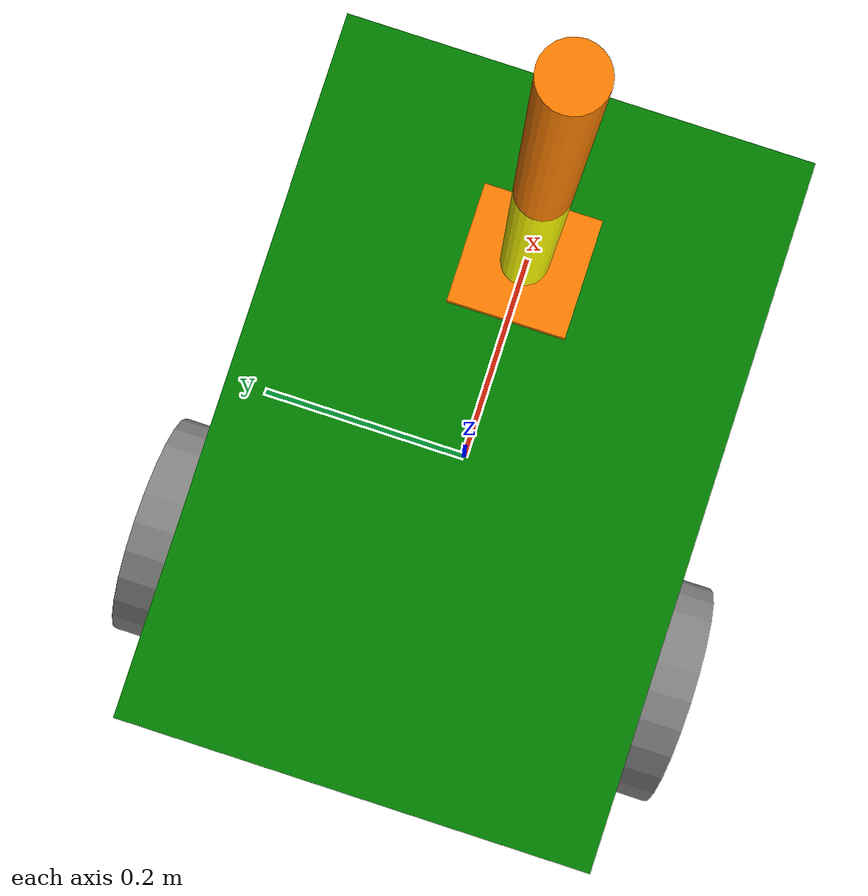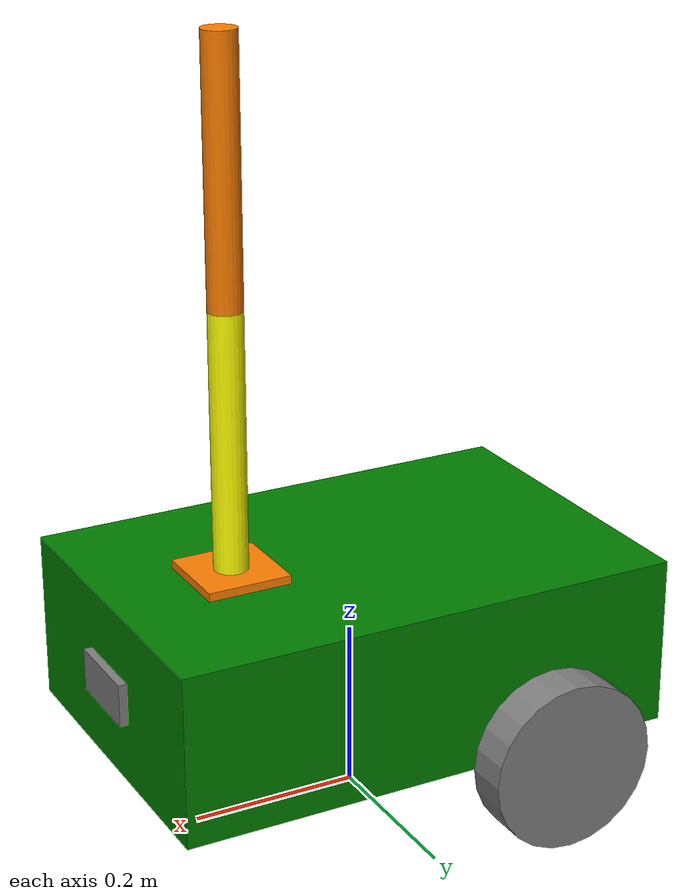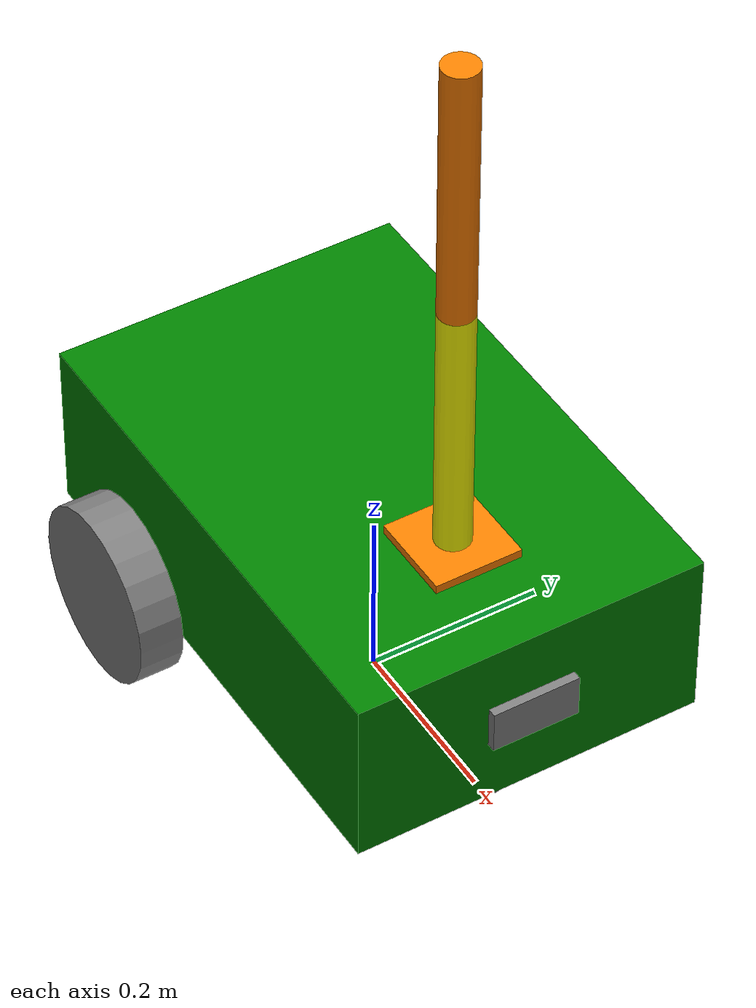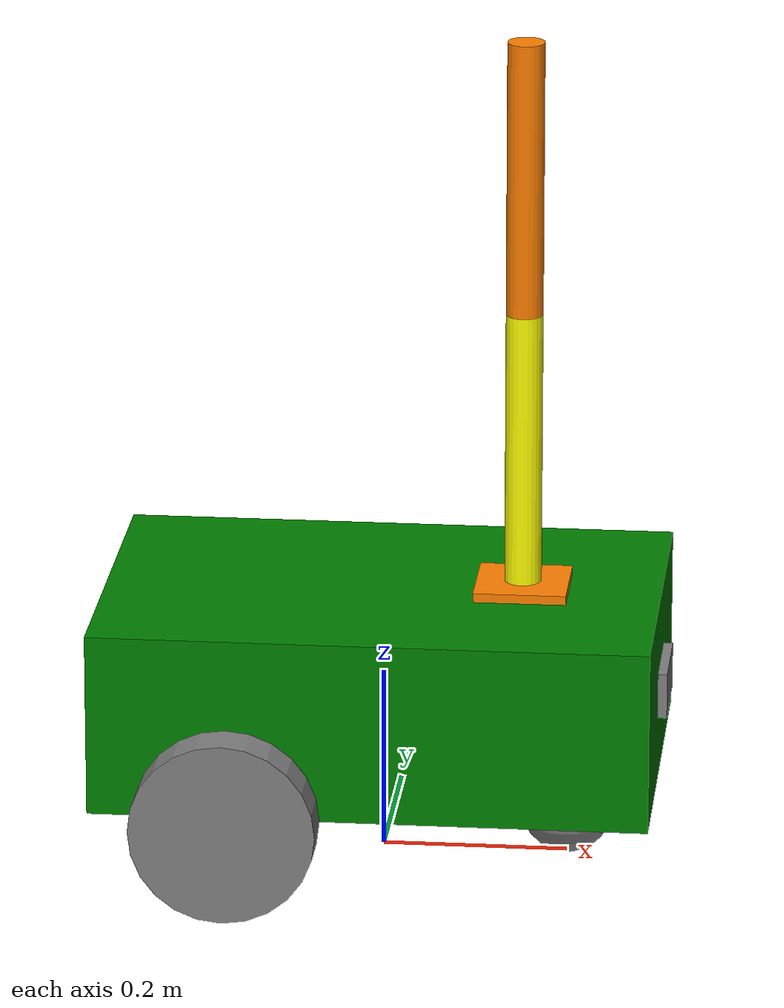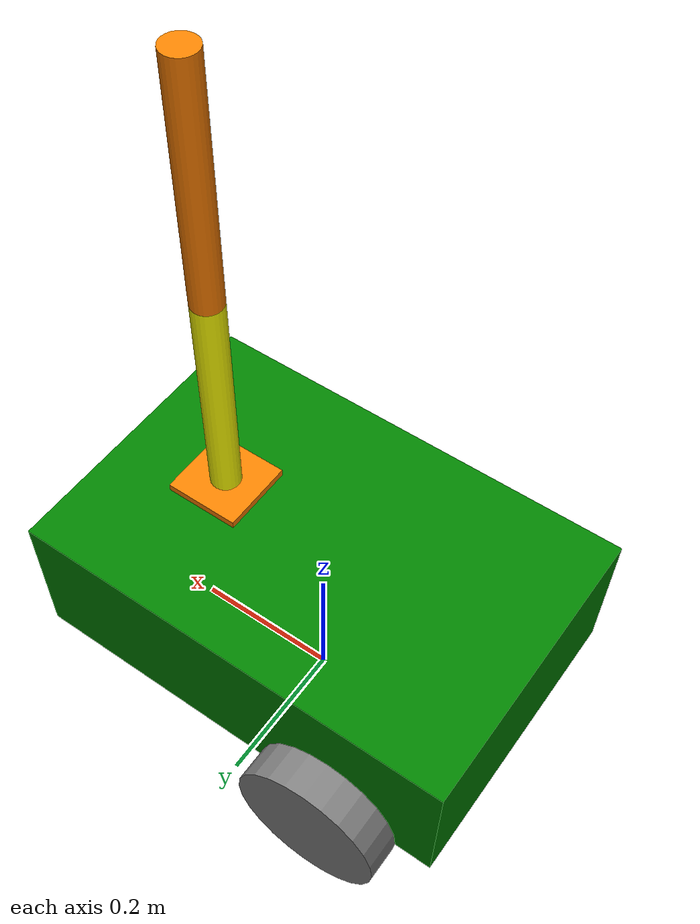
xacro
<?xml version="1.0"?>
<robot name="my_robot" xmlns:xacro="http://www.ros.org/wiki/xacro">

    <xacro:include filename="common_properties.urdf.xacro"></xacro:include>
    <xacro:include filename="mobile_base.urdf.xacro"></xacro:include>
    <xacro:include filename="mobile_base_gazebo.urdf.xacro"></xacro:include>
    <xacro:include filename="camera.urdf.xacro"></xacro:include>
    <xacro:include filename="arm.xacro"></xacro:include>
    <xacro:include filename="arm_gazebo.urdf.xacro"></xacro:include>

    <joint name="mobile_base_arm_joint" type="fixed">
        <parent link="base_link"></parent>
        <child link="arm_base_link"></child>
        <origin xyz="${base_length/4} 0 ${base_height}" rpy="0 0 0"></origin>
    </joint>

</robot>

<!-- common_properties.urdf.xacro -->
<robot xmlns:xacro="http://www.ros.org/wiki/xacro">

    <material name="green">
        <color rgba="0 0.5 0 1"></color>
    </material>

    <material name="blue">
        <color rgba="0 0 0.5 1"></color>
    </material>

    <material name="grey">
        <color rgba="0.5 0.5 0.5 1"></color>
    </material>

    <material name="yellow">
        <color rgba="1 1 0 1"></color>
    </material>

    <material name="orange">
        <color rgba="1 0.5 0 1"></color>
    </material>

    <xacro:macro name="box_inertia" params="mass length width height xyz rpy">
        <inertial>
            <origin xyz="${xyz}" rpy="${rpy}"></origin>
            <mass value="${mass}"></mass>
            <inertia ixx="${(mass/12)*(height*height + length*length)}" ixy="0" ixz="0"
                     iyy="${(mass/12)*(width*width + length*length)}" iyz="0"
                     izz="${(mass/12)*(width*width + height*height)}"></inertia>
        </inertial>
    </xacro:macro>

    <xacro:macro name="cylinder_inertia" params="mass length radius xyz rpy">
        <inertial>
            <origin xyz="${xyz}" rpy="${rpy}"></origin>
            <mass value="${mass}"></mass>
            <inertia ixx="${(mass/12)*(3*radius*radius + length*length)}" ixy="0" ixz="0"
                     iyy="${(mass/12)*(3*radius*radius + length*length)}" iyz="0"
                     izz="${(mass/2)*(radius*radius)}"></inertia>
        </inertial>
    </xacro:macro>

    <xacro:macro name="sphere_inertia" params="mass radius xyz rpy">
        <inertial>
            <origin xyz="${xyz}" rpy="${rpy}"></origin>
            <mass value="${mass}"></mass>
            <inertia ixx="${(2*mass/5)*radius*radius}" ixy="0" ixz="0"
                     iyy="${(2*mass/5)*radius*radius}" iyz="0"
                     izz="${(2*mass/5)*radius*radius}"></inertia>
        </inertial>
    </xacro:macro>
</robot>

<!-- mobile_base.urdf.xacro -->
<robot xmlns:xacro="http://www.ros.org/wiki/xacro">

    <xacro:property name="base_length" value="0.6"></xacro:property>
    <xacro:property name="base_width" value="0.4"></xacro:property>
    <xacro:property name="base_height" value="0.2"></xacro:property>
    <xacro:property name="wheel_radius" value="0.1"></xacro:property>
    <xacro:property name="wheel_length" value="0.05"></xacro:property>

    <link name="base_footprint"></link>

    <link name="base_link">
        <visual>
            <geometry>
                <box size="${base_length} ${base_width} ${base_height}"></box>
            </geometry>
            <origin xyz="0 0 ${base_height/2.0}" rpy="0 0 0"></origin>
            <material name="green"></material>
        </visual>
        <collision>
            <geometry>
                <box size="${base_length} ${base_width} ${base_height}"></box>
            </geometry>
            <origin xyz="0 0 ${base_height/2.0}" rpy="0 0 0"></origin>
        </collision>
        <xacro:box_inertia mass="5.0" length="${2*base_length}" width="${2*base_width}"
                           height="${2*base_height}" xyz="0 0 ${base_height/2.0}" rpy="0 0 0">
        </xacro:box_inertia>
    </link>

    <xacro:macro name="wheel_link" params="prefix">
        <link name="${prefix}_wheel_link">
            <visual>
                <geometry>
                    <cylinder radius="${wheel_radius}" length="${wheel_length}"></cylinder>
                </geometry>
                <origin xyz="0 0 0" rpy="${pi/2.0} 0 0"></origin>
                <material name="grey"></material>
            </visual>
            <collision>
                <geometry>
                    <cylinder radius="${wheel_radius}" length="${wheel_length}"></cylinder>
                </geometry>
                <origin xyz="0 0 0" rpy="${pi/2.0} 0 0"></origin>
            </collision>
            <xacro:cylinder_inertia mass="1.0" radius="${2*wheel_radius}" length="${2*wheel_length}"
                                    xyz="0 0 0" rpy="${pi/2.0} 0 0">
            </xacro:cylinder_inertia>
        </link>
    </xacro:macro>

    <xacro:wheel_link prefix="right"></xacro:wheel_link>
    <xacro:wheel_link prefix="left"></xacro:wheel_link>

    <link name="caster_wheel_link">
        <visual>
            <geometry>
                <sphere radius="${wheel_radius/2.0}"></sphere>
            </geometry>
            <origin xyz="0 0 0" rpy="0 0 0"></origin>
            <material name="grey"></material>
        </visual>
        <collision>
            <geometry>
                <sphere radius="${wheel_radius/2.0}"></sphere>
            </geometry>
            <origin xyz="0 0 0" rpy="0 0 0"></origin>
        </collision>
        <xacro:sphere_inertia mass="0.5" radius="${wheel_radius}" xyz="0 0 0" rpy="0 0 0">
        </xacro:sphere_inertia>
    </link>

    <joint name="base_joint" type="fixed">
        <parent link="base_footprint"></parent>
        <child link="base_link"></child>
        <origin xyz="0 0 ${base_height/2}" rpy="0 0 0"></origin>
    </joint>

    <joint name="base_right_wheel_joint" type="continuous">
        <parent link="base_link"></parent>
        <child link="right_wheel_link"></child>
        <origin xyz="-${base_length/4.0} ${(base_width + wheel_length)/2.0} 0" rpy="0 0 0"></origin>
        <axis xyz="0 1 0"></axis>
    </joint>

    <joint name="base_left_wheel_joint" type="continuous">
        <parent link="base_link"></parent>
        <child link="left_wheel_link"></child>
        <origin xyz="-${base_length/4.0} -${(base_width + wheel_length)/2.0} 0" rpy="0 0 0"></origin>
        <axis xyz="0 1 0"></axis>
    </joint>

    <joint name="base_caster_wheel_joint" type="fixed">
        <parent link="base_link"></parent>
        <child link="caster_wheel_link"></child>
        <origin xyz="${base_length/3.0} 0 -${wheel_radius/2.0}" rpy="0 0 0"></origin>
    </joint>

</robot>

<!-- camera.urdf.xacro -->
<robot xmlns:xacro="http://www.ros.org/wiki/xacro">

    <xacro:property name="camera_length" value="0.01"></xacro:property>
    <xacro:property name="camera_width" value="0.1"></xacro:property>
    <xacro:property name="camera_height" value="0.05"></xacro:property>

    <link name="camera_link">
        <visual>
            <geometry>
                <box size="${camera_length} ${camera_width} ${camera_height}"></box>
            </geometry>
            <material name="grey"></material>
        </visual>
        <collision>
            <geometry>
                 <box size="${camera_length} ${camera_width} ${camera_height}"></box>
            </geometry>
        </collision>
        <xacro:box_inertia mass="0.1" length="${camera_length}" width="${camera_width}"
                           height="${camera_height}" xyz="0 0 0" rpy="0 0 0"></xacro:box_inertia>
    </link>

    <joint name="base_camera_joint" type="fixed">
        <parent link="base_link"></parent>
        <child link="camera_link"></child>
        <origin xyz="${(base_length+camera_length)/2.0} 0 ${base_height/2} " rpy="0 0 0"></origin>
    </joint>

    <gazebo reference="camera_link">
        <material>Gazebo/Red</material>
        <sensor name="camera_sensor" type="camera">
            <pose>0 0 0 0 0 0</pose>
            <visualize>True</visualize>
            <update_rate>10.0</update_rate>
            <plugin name="camera_sensor" filename="libgazebo_ros_camera.so">
                <frame_name>camera_link</frame_name>
            </plugin>
        </sensor>
    </gazebo>

</robot>

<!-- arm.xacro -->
<robot xmlns:xacro="http://www.ros.org/wiki/xacro">

    <xacro:property name="arm_base_length" value="0.1"></xacro:property>
    <xacro:property name="arm_base_width" value="0.1"></xacro:property>
    <xacro:property name="arm_base_height" value="0.02"></xacro:property>
    <xacro:property name="arm_radius" value="0.02"></xacro:property>
    <xacro:property name="arm_length" value="0.3"></xacro:property>

    <link name="arm_base_link">
        <visual>
            <geometry>
                <box size="${arm_base_length} ${arm_base_width} ${arm_base_height}"></box>
            </geometry>
            <origin xyz="0 0 0" rpy="0 0 0"></origin>
            <material name="orange"></material>
        </visual>
        <collision>
            <geometry>
                <box size="${arm_base_length} ${arm_base_width} ${arm_base_height}"></box>
            </geometry>
            <origin xyz="0 0 0" rpy="0 0 0"></origin>
        </collision>
        <xacro:box_inertia mass="0.5" length="${2*arm_base_length}" width="${2*arm_base_width}"
                           height="${2*arm_base_height}" xyz="0 0 0" rpy="0 0 0">
        </xacro:box_inertia>
    </link>

    <link name="forearm_link">
        <visual>
            <geometry>
                <cylinder radius="${arm_radius}" length="${arm_length}"></cylinder>
            </geometry>
            <origin xyz="0 0 ${arm_length/2}" rpy="0 0 0"></origin>
            <material name="yellow"></material>
        </visual>
        <collision>
            <geometry>
                <cylinder radius="${arm_radius}" length="${arm_length}"></cylinder>
            </geometry>
            <origin xyz="0 0 ${arm_length/2}" rpy="0 0 0"></origin>
        </collision>
        <xacro:cylinder_inertia mass="0.3" radius="${2*arm_radius}" length="${2*arm_length}"
                                xyz="0 0 0" rpy="0 0 0">
        </xacro:cylinder_inertia>
    </link>

    <link name="hand_link">
        <visual>
            <geometry>
                <cylinder radius="${arm_radius}" length="${arm_length}"></cylinder>
            </geometry>
            <origin xyz="0 0 ${arm_length/2}" rpy="0 0 0"></origin>
            <material name="orange"></material>
        </visual>
        <collision>
            <geometry>
                <cylinder radius="${arm_radius}" length="${arm_length}"></cylinder>
            </geometry>
            <origin xyz="0 0 ${arm_length/2}" rpy="0 0 0"></origin>
        </collision>
        <xacro:cylinder_inertia mass="0.3" radius="${2*arm_radius}" length="${2*arm_length}"
                                xyz="0 0 0" rpy="0 0 0">
        </xacro:cylinder_inertia>
    </link>

    <joint name="arm_base_forearm_joint" type="revolute">
        <parent link="arm_base_link"></parent>
        <child link="forearm_link"></child>
        <limit lower="0" upper="${pi/2.0}" effort="100" velocity="100"></limit>
        <dynamics friction="0.05" damping="0.1"></dynamics>
        <origin xyz="0 0 ${arm_base_height/2}" rpy="0 0 0"></origin>
        <axis xyz="0 1 0"></axis>
    </joint>

    <joint name="forearm_hand_joint" type="revolute">
        <parent link="forearm_link"></parent>
        <child link="hand_link"></child>
        <limit lower="0" upper="${pi/2.0}" effort="100" velocity="100"></limit>
        <dynamics friction="0.05" damping="0.1"></dynamics>
        <origin xyz="0 0 ${arm_length}" rpy="0 0 0"></origin>
        <axis xyz="0 1 0"></axis>
    </joint>

</robot>
